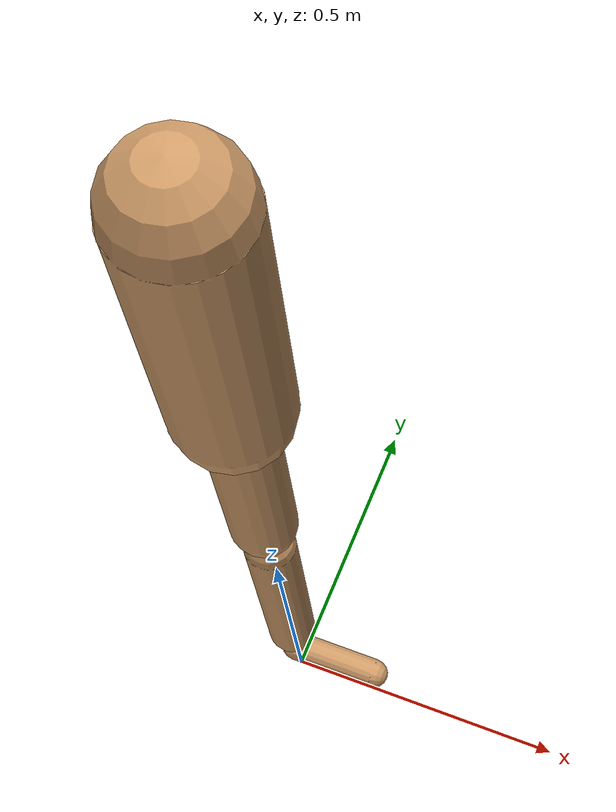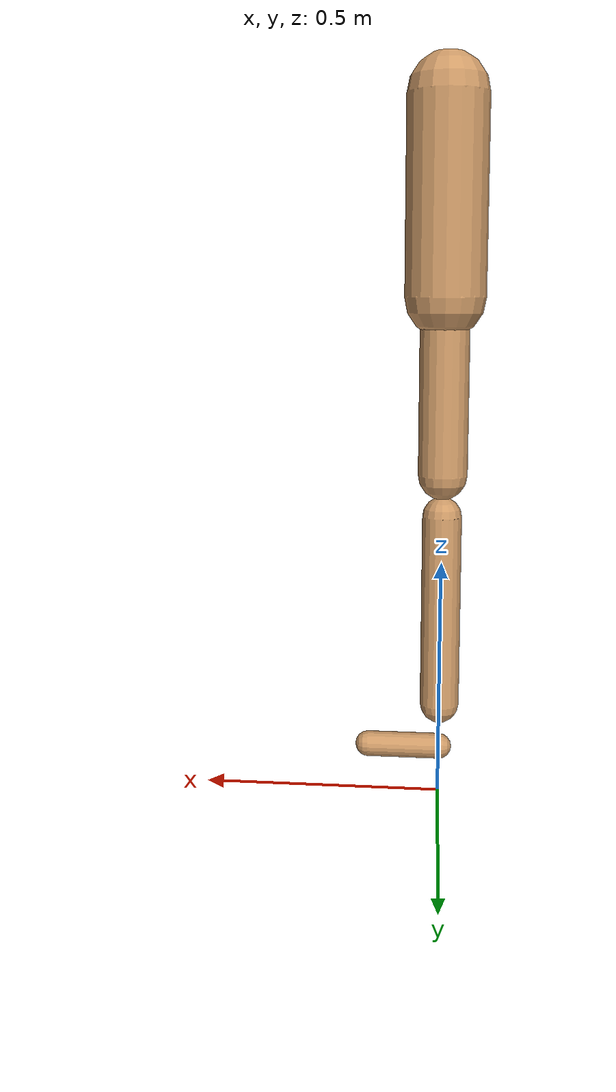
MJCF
<mujoco model="walker2d">
  <compiler angle="degree" coordinate="global" inertiafromgeom="true" />
  <default>
    <joint armature="0.01" damping=".1" limited="true" />
    <geom conaffinity="0" condim="3" contype="1" density="1000" friction="0.8 .1 .1" rgba="0.8 0.6 .4 1" />
  </default>
  <option integrator="RK4" timestep="0.002" />
  <worldbody>

    <body name="torso" pos="0 0 -0.18117034294408707">
      <joint armature="0" axis="1 0 0" damping="0" limited="false" name="ignorex" pos="0 0 0" stiffness="0" type="slide" />
      <joint armature="0" axis="0 0 1" damping="0" limited="false" name="ignorez" pos="0 0 0" ref="1.25" stiffness="0" type="slide" />
      <joint armature="0" axis="0 1 0" damping="0" limited="false" name="ignorey" pos="0 0 0" stiffness="0" type="hinge" />
      <geom fromto="0 0 1.45 0 0 1.05" name="torso_geom" size="0.08261256202365364" type="capsule" />
      <body name="thigh">
        <joint axis="0 -1 0" name="thigh_joint" pos="0 0 1.05" range="-150 0" type="hinge" />
        <geom fromto="0.0 0.0 1.05 0.0 0.0 0.6858175308682517" name="thigh_geom" size="0.050675963328146716" type="capsule" />
        <body name="leg" pos="0.0 0.0 0.08581753086825172">
          <joint axis="0 -1 0" name="leg_joint" pos="0 0 0.6" range="-150 0" type="hinge" />
          <geom fromto="0.0 0.0 0.6 0.0 0.0 0.1953528120758353" name="leg_geom" size="0.04054077066251737" type="capsule" />
          <body name="foot" pos="0.0 0.0 0.09535281207583529">
            <joint axis="0 -1 0" name="foot_joint" pos="0 0 0.1" range="-45 45" type="hinge" />
            <geom fromto="0.0 0.0 0.1 0.15072518669072846 0.0 0.1" name="foot_geom" size="0.026365003506810623" type="capsule" />
          </body>
        </body>
      </body>

      <body name="thigh_left">
        <joint axis="0 -1 0" name="thigh_left_joint" pos="0 0 1.05" range="-150 0" type="hinge" />
        <geom fromto="0.0 0.0 1.05 0.0 0.0 0.6858175308682517" name="thigh_left_geom" rgba=".7 .3 .6 1" size="0.050675963328146716" type="capsule" />
        <body name="leg_left" pos="0.0 0.0 0.08581753086825172">
          <joint axis="0 -1 0" name="leg_left_joint" pos="0 0 0.6" range="-150 0" type="hinge" />
          <geom fromto="0.0 0.0 0.6 0.0 0.0 0.1953528120758353" name="leg_left_geom" rgba=".7 .3 .6 1" size="0.04054077066251737" type="capsule" />
          <body name="foot_left" pos="0.0 0.0 0.09535281207583529">
            <joint axis="0 -1 0" name="foot_left_joint" pos="0 0 0.1" range="-45 45" type="hinge" />
            <geom fromto="0.0 0.0 0.1 0.15072518669072846 0.0 0.1" name="foot_left_geom" rgba=".7 .3 .6 1" size="0.026365003506810623" type="capsule" />
          </body>
        </body>
      </body>
    </body>
  </worldbody>
  <actuator>

    <motor ctrllimited="true" ctrlrange="-1.0 1.0" gear="100" joint="thigh_joint" />
    <motor ctrllimited="true" ctrlrange="-1.0 1.0" gear="100" joint="leg_joint" />
    <motor ctrllimited="true" ctrlrange="-1.0 1.0" gear="100" joint="foot_joint" />
    <motor ctrllimited="true" ctrlrange="-1.0 1.0" gear="100" joint="thigh_left_joint" />
    <motor ctrllimited="true" ctrlrange="-1.0 1.0" gear="100" joint="leg_left_joint" />
    <motor ctrllimited="true" ctrlrange="-1.0 1.0" gear="100" joint="foot_left_joint" />

  </actuator>
</mujoco>
